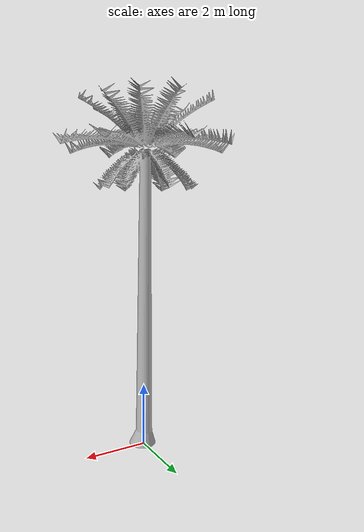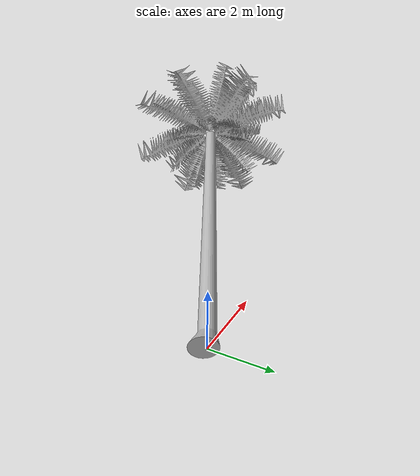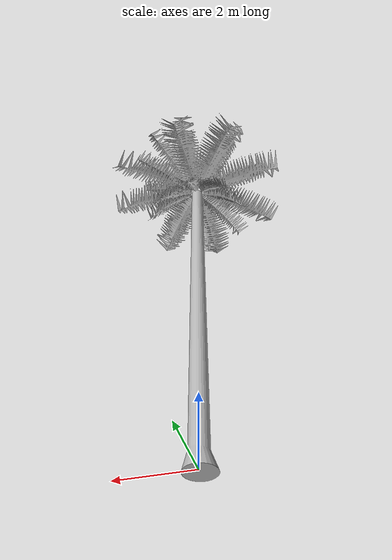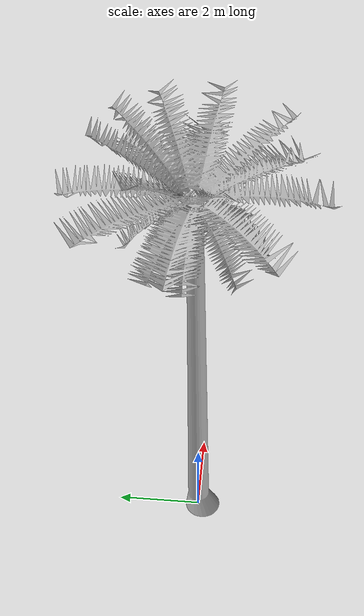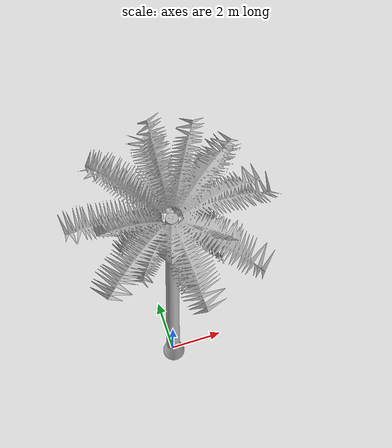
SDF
<?xml version="1.0" ?>
<sdf version="1.5">
  <model name="Palm Tree">
     <static>true</static>
    <link name="link">
      <collision name="collision">
        <geometry>
          <mesh>
            <scale>0.02 0.02 0.02</scale>
            <uri>model://palm_tree/meshes/palm_tree.dae</uri>
          </mesh>
        </geometry>
      </collision>
      <visual name="visual">
        <geometry>
          <mesh>

            <scale>0.02 0.02 0.02</scale>
            <uri>model://palm_tree/meshes/palm_tree.dae</uri>
          </mesh>
        </geometry>
      </visual>
    </link>
  </model>
</sdf>
